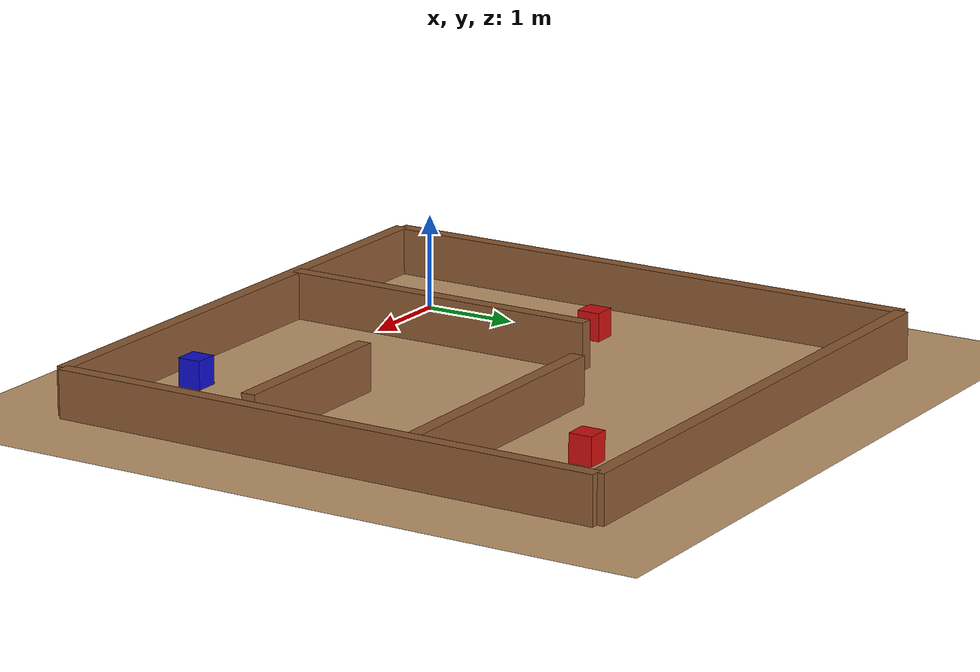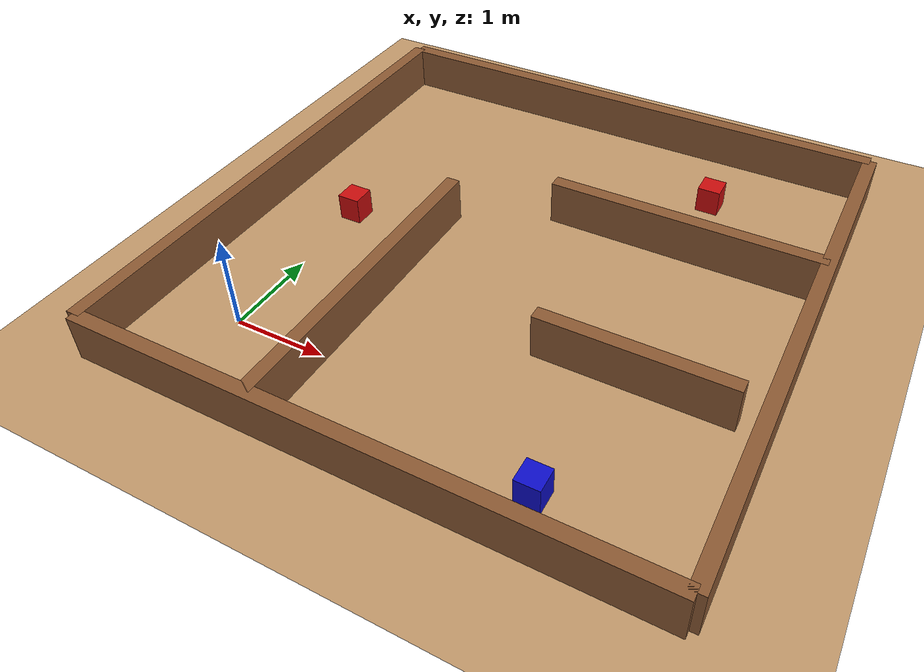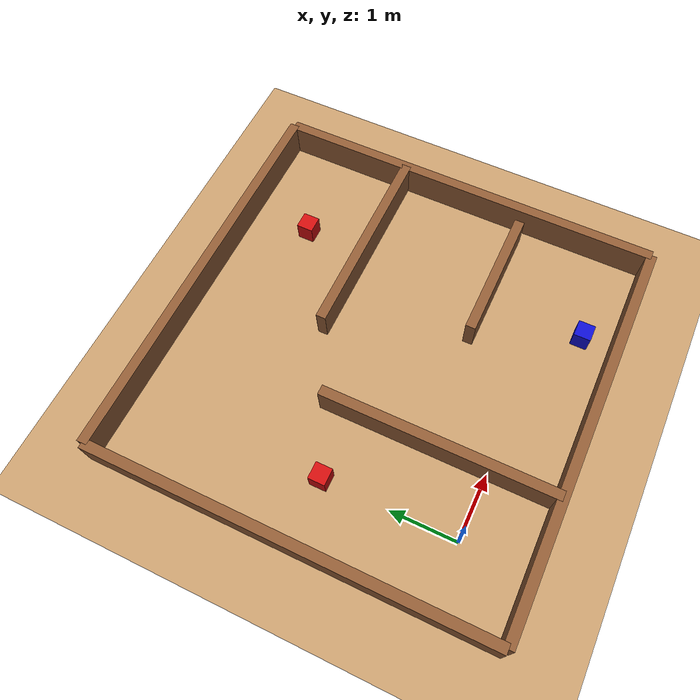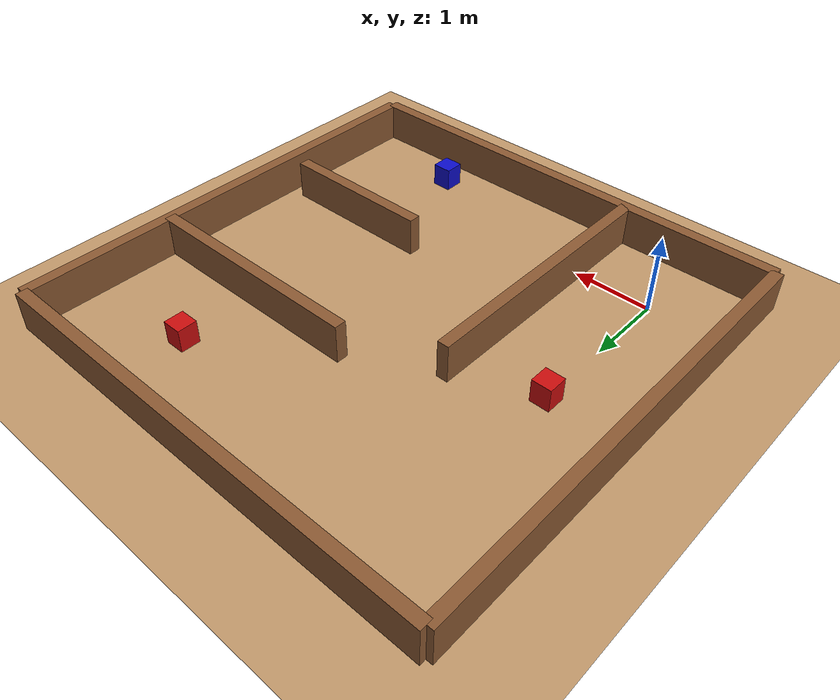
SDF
<sdf version='1.7'>
  <world name='laberinto_simple_victimas'>
    <gravity>0 0 -9.8</gravity>
    <physics type='ode'>
      <max_step_size>0.001</max_step_size>
      <real_time_factor>1</real_time_factor>
      <real_time_update_rate>1000</real_time_update_rate>
    </physics>

    <plugin filename="gz-sim-physics-system"
            name="gz::sim::systems::Physics"/>
    <plugin filename="gz-sim-user-commands-system"
            name="gz::sim::systems::UserCommands"/>
    <plugin filename="gz-sim-scene-broadcaster-system"
            name="gz::sim::systems::SceneBroadcaster"/>
    <plugin filename="gz-sim-contact-system"
            name="gz::sim::systems::Contact"/>
    <plugin filename="gz-sim-sensors-system"
            name="gz::sim::systems::Sensors">
      <render_engine>ogre2</render_engine>
    </plugin>
    <plugin filename="gz-sim-imu-system"
            name="gz::sim::systems::Imu"/>
    <scene>
      <ambient>0.4 0.4 0.4 1</ambient>
      <background>0.7 0.7 0.7 1</background>
      <shadows>1</shadows>
    </scene>

    <include>
      <uri>model://sun</uri>
    </include>

    <model name='floor'>
      <static>1</static>
      <link name='link'>
        <collision name='collision'>
          <geometry>
            <plane>
              <normal>0 0 1</normal>
              <size>8 8</size>
            </plane>
          </geometry>
        </collision>
        <visual name='visual'>
          <geometry>
            <plane>
              <normal>0 0 1</normal>
              <size>8 8</size>
            </plane>
          </geometry>
          <material>
            <ambient>0.76 0.6 0.42 1</ambient>
            <diffuse>0.76 0.6 0.42 1</diffuse>
            <specular>0.2 0.2 0.2 1</specular>
          </material>
        </visual>
      </link>
      <pose>2 2 0 0 0 0</pose>
    </model>

    <model name='maze_simple'>
      <static>1</static>

      <!-- Outer walls -->
      <link name='wall_north'>
        <pose>2 5 0.25 0 0 0</pose>
        <collision name='collision'>
          <geometry>
            <box>
              <size>6 0.15 0.5</size>
            </box>
          </geometry>
        </collision>
        <visual name='visual'>
          <geometry>
            <box>
              <size>6 0.15 0.5</size>
            </box>
          </geometry>
          <material>
            <ambient>0.55 0.35 0.2 1</ambient>
            <diffuse>0.55 0.35 0.2 1</diffuse>
            <specular>0.2 0.2 0.2 1</specular>
          </material>
        </visual>
      </link>
      <link name='wall_south'>
        <pose>2 -1 0.25 0 0 0</pose>
        <collision name='collision'>
          <geometry>
            <box>
              <size>6 0.15 0.5</size>
            </box>
          </geometry>
        </collision>
        <visual name='visual'>
          <geometry>
            <box>
              <size>6 0.15 0.5</size>
            </box>
          </geometry>
          <material>
            <ambient>0.55 0.35 0.2 1</ambient>
            <diffuse>0.55 0.35 0.2 1</diffuse>
            <specular>0.2 0.2 0.2 1</specular>
          </material>
        </visual>
      </link>
      <link name='wall_west'>
        <pose>-1 2 0.25 0 0 0</pose>
        <collision name='collision'>
          <geometry>
            <box>
              <size>0.15 6 0.5</size>
            </box>
          </geometry>
        </collision>
        <visual name='visual'>
          <geometry>
            <box>
              <size>0.15 6 0.5</size>
            </box>
          </geometry>
          <material>
            <ambient>0.55 0.35 0.2 1</ambient>
            <diffuse>0.55 0.35 0.2 1</diffuse>
            <specular>0.2 0.2 0.2 1</specular>
          </material>
        </visual>
      </link>
      <link name='wall_east'>
        <pose>5 2 0.25 0 0 0</pose>
        <collision name='collision'>
          <geometry>
            <box>
              <size>0.15 6 0.5</size>
            </box>
          </geometry>
        </collision>
        <visual name='visual'>
          <geometry>
            <box>
              <size>0.15 6 0.5</size>
            </box>
          </geometry>
          <material>
            <ambient>0.55 0.35 0.2 1</ambient>
            <diffuse>0.55 0.35 0.2 1</diffuse>
            <specular>0.2 0.2 0.2 1</specular>
          </material>
        </visual>
      </link>

      <!-- Internal walls with openings for block placement -->
      <link name='wall_inner_1'>
        <pose>1 0.75 0.25 0 0 0</pose>
        <collision name='collision'>
          <geometry>
            <box>
              <size>0.15 3.5 0.5</size>
            </box>
          </geometry>
        </collision>
        <visual name='visual'>
          <geometry>
            <box>
              <size>0.15 3.5 0.5</size>
            </box>
          </geometry>
          <material>
            <ambient>0.55 0.35 0.2 1</ambient>
            <diffuse>0.55 0.35 0.2 1</diffuse>
            <specular>0.2 0.2 0.2 1</specular>
          </material>
        </visual>
      </link>
      <link name='wall_inner_2'>
        <pose>3.5 3 0.25 0 0 0</pose>
        <collision name='collision'>
          <geometry>
            <box>
              <size>3 0.15 0.5</size>
            </box>
          </geometry>
        </collision>
        <visual name='visual'>
          <geometry>
            <box>
              <size>3 0.15 0.5</size>
            </box>
          </geometry>
          <material>
            <ambient>0.55 0.35 0.2 1</ambient>
            <diffuse>0.55 0.35 0.2 1</diffuse>
            <specular>0.2 0.2 0.2 1</specular>
          </material>
        </visual>
      </link>
      <link name='wall_inner_3'>
        <pose>3.75 1 0.25 0 0 0</pose>
        <collision name='collision'>
          <geometry>
            <box>
              <size>2 0.15 0.5</size>
            </box>
          </geometry>
        </collision>
        <visual name='visual'>
          <geometry>
            <box>
              <size>2 0.15 0.5</size>
            </box>
          </geometry>
          <material>
            <ambient>0.55 0.35 0.2 1</ambient>
            <diffuse>0.55 0.35 0.2 1</diffuse>
            <specular>0.2 0.2 0.2 1</specular>
          </material>
        </visual>
      </link>
    </model>

    <!-- Marcas de color: cubos angostos y altos (base cuadrada, mas alto
         que ancho) para que la camara los vea bien de lejos. Tienen
         colision, asi que tambien son un obstaculo fisico real. -->
    <model name='marcas_color'>
      <static>1</static>

      <link name='cuadrado_rojo_1'>
        <pose>0 2 0.15 0 0 0</pose>
        <collision name='collision'>
          <geometry>
            <box>
              <size>0.25 0.25 0.3</size>
            </box>
          </geometry>
        </collision>
        <visual name='visual'>
          <geometry>
            <box>
              <size>0.25 0.25 0.3</size>
            </box>
          </geometry>
          <material>
            <ambient>0.8 0.05 0.05 1</ambient>
            <diffuse>0.8 0.05 0.05 1</diffuse>
            <specular>0.1 0.1 0.1 1</specular>
          </material>
        </visual>
      </link>

      <link name='cuadrado_rojo_2'>
        <pose>3.5 4 0.15 0 0 0</pose>
        <collision name='collision'>
          <geometry>
            <box>
              <size>0.25 0.25 0.3</size>
            </box>
          </geometry>
        </collision>
        <visual name='visual'>
          <geometry>
            <box>
              <size>0.25 0.25 0.3</size>
            </box>
          </geometry>
          <material>
            <ambient>0.8 0.05 0.05 1</ambient>
            <diffuse>0.8 0.05 0.05 1</diffuse>
            <specular>0.1 0.1 0.1 1</specular>
          </material>
        </visual>
      </link>

      <link name='cuadrado_azul_1'>
        <pose>3.5 -0.5 0.15 0 0 0</pose>
        <collision name='collision'>
          <geometry>
            <box>
              <size>0.25 0.25 0.3</size>
            </box>
          </geometry>
        </collision>
        <visual name='visual'>
          <geometry>
            <box>
              <size>0.25 0.25 0.3</size>
            </box>
          </geometry>
          <material>
            <ambient>0.05 0.05 0.8 1</ambient>
            <diffuse>0.05 0.05 0.8 1</diffuse>
            <specular>0.1 0.1 0.1 1</specular>
          </material>
        </visual>
      </link>
    </model>
  </world>
</sdf>
